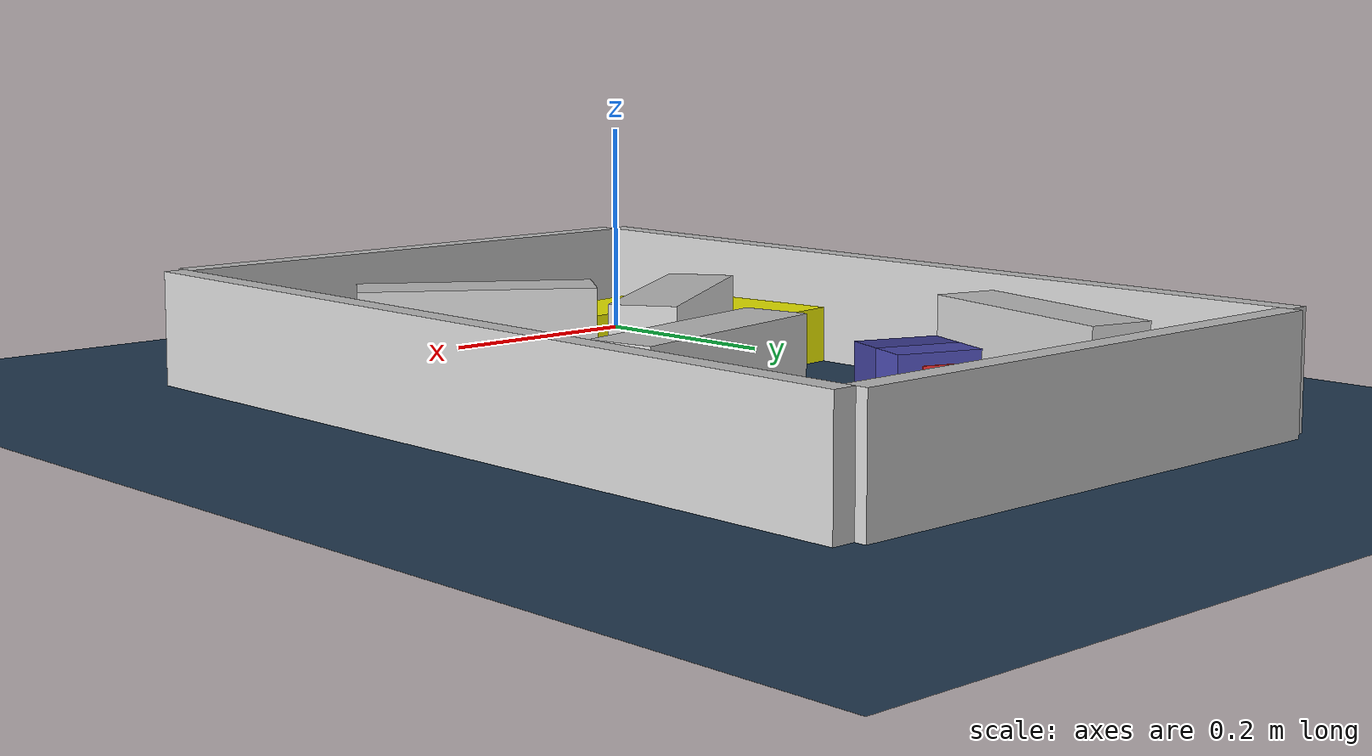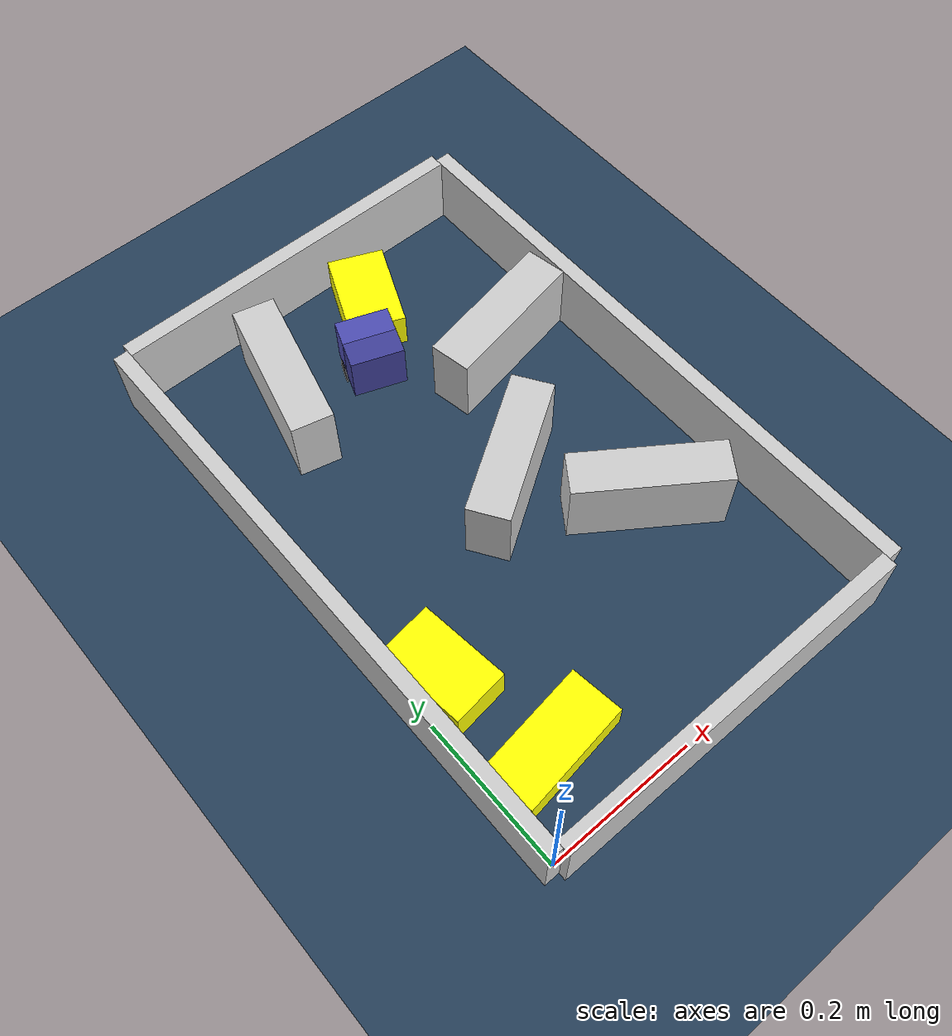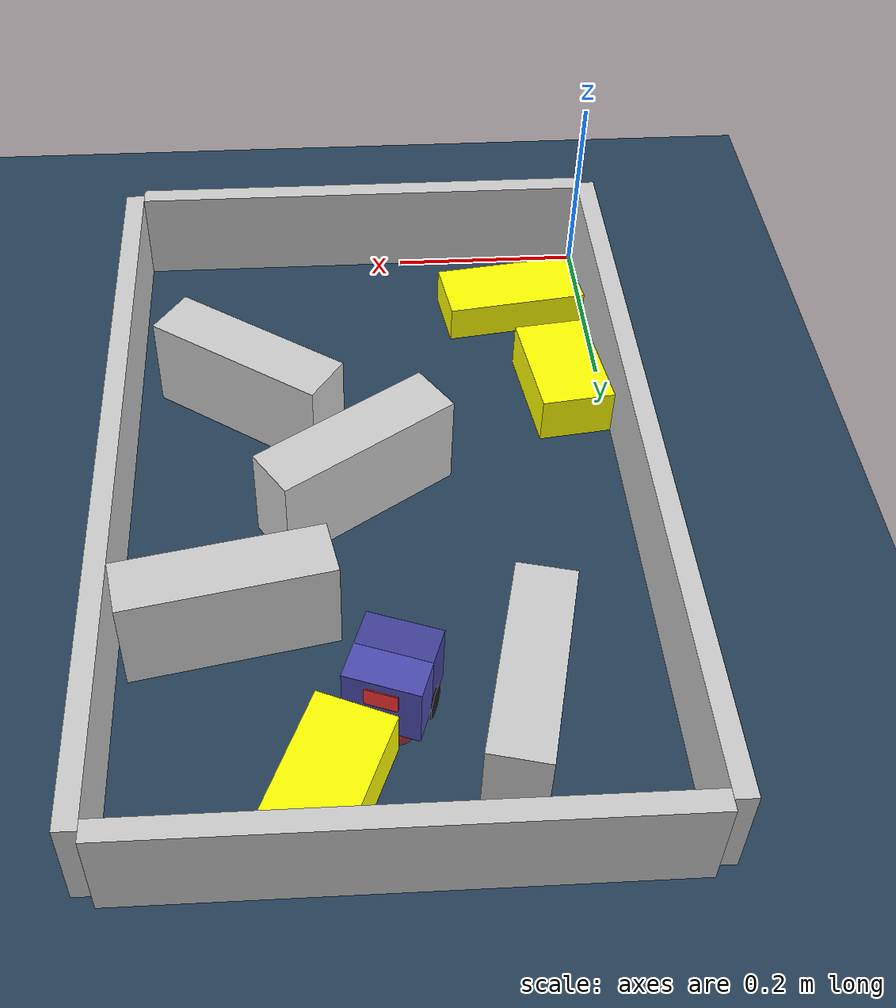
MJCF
<?xml version='1.0' encoding='utf-8'?>
<mujoco model="real_buildable">
  <compiler angle="degree" />
  <option timestep="0.002" integrator="implicitfast" iterations="100" cone="elliptic" />
  <default>
    <geom density="1" />
  </default>
  <asset>
    <texture builtin="gradient" height="3072" rgb1="0.3 0.5 0.7" rgb2="0 0 0" type="skybox" width="512" />
    <texture builtin="checker" height="300" mark="edge" markrgb="0.8 0.8 0.8" name="groundplane" rgb1="0.2 0.3 0.4" rgb2="0.1 0.2 0.3" type="2d" width="300" />
    <material name="groundplane" reflectance="0.2" texrepeat="5 5" texture="groundplane" texuniform="true" />
  </asset>
  <worldbody>
    <light dir="0 0 -1" directional="true" pos="0 0 1.5" />
    <geom name="floor" type="plane" condim="4" friction="0.5 0.005 0.001" material="groundplane" size="0 0 0.05" />
    <body name="walls">
      <geom name="wall_boundary_left" type="box" condim="4" friction="1.0 0.005 0.0001" rgba="0.8 0.8 0.8 1" pos="-0.010000 0.387500 0.050000" euler="0 0 0.000000" size="0.010000 0.397500 0.050000" />
      <geom name="wall_boundary_right" type="box" condim="4" friction="1.0 0.005 0.0001" rgba="0.8 0.8 0.8 1" pos="0.500000 0.387500 0.050000" euler="0 0 0.000000" size="0.010000 0.397500 0.050000" />
      <geom name="wall_boundary_bottom" type="box" condim="4" friction="1.0 0.005 0.0001" rgba="0.8 0.8 0.8 1" pos="0.245000 -0.010000 0.050000" euler="0 0 0.000000" size="0.245000 0.010000 0.050000" />
      <geom name="wall_boundary_top" type="box" condim="4" friction="1.0 0.005 0.0001" rgba="0.8 0.8 0.8 1" pos="0.245000 0.785000 0.050000" euler="0 0 0.000000" size="0.245000 0.010000 0.050000" />
      <geom name="wall_inner_1" type="box" condim="4" friction="1.0 0.005 0.0001" rgba="0.8 0.8 0.8 1" pos="0.268160 0.376264 0.050000" euler="0 0 213.073979" size="0.097500 0.027500 0.050000" />
      <geom name="wall_inner_2" type="box" condim="4" friction="1.0 0.005 0.0001" rgba="0.8 0.8 0.8 1" pos="0.371907 0.249159 0.050000" euler="0 0 145.103695" size="0.097500 0.027500 0.050000" />
      <geom name="wall_inner_3" type="box" condim="4" friction="1.0 0.005 0.0001" rgba="0.8 0.8 0.8 1" pos="0.389000 0.538000 0.050000" euler="0 0 10.700000" size="0.097500 0.027500 0.050000" />
      <geom name="wall_inner_4" type="box" condim="4" friction="1.0 0.005 0.0001" rgba="0.8 0.8 0.8 1" pos="0.133000 0.647000 0.050000" euler="0 0 76.100000" size="0.097500 0.027500 0.050000" />
    </body>
    <body name="car" pos="0.24638637798860588 0.62189680570359207 0.01" quat="0.82058996665937589 0 0 0.57151737210513931">
      <freejoint name="car_freejoint" />
      <inertial pos="0 0 0.0375" mass="0.35" diaginertia="0.000266 0.000266 0.000286" />
      <geom name="front_chassis_collision" type="box" pos="0.0175 0 0.0375" size="0.0175 0.035 0.0325" rgba="0.3 0.3 0.7 1" />
      <geom name="rear_chassis_collision" type="box" pos="-0.0175 0 0.0375" size="0.0175 0.035 0.0325" rgba="0.25 0.25 0.6 1" />
      <geom name="front_marker" type="box" pos="0.034 0 0.0505" size="0.002 0.015 0.01" rgba="1 0.2 0.2 1" contype="0" conaffinity="0" />
      <body name="rear_support_body" pos="-0.03 0 0.0025">
        <joint name="rear_caster_joint" type="ball" damping="0.0001" />
        <inertial pos="0 0 0" mass="0.025" diaginertia="0.000001 0.000001 0.000001" />
        <geom name="rear_support" type="sphere" pos="0 0 0" size="0.0025" friction="0 0 0" rgba="0.7 0.1 0.1 1" />
      </body>
      <body name="front_support_body" pos="0.03 0 0.0025">
        <joint name="front_caster_joint" type="ball" damping="0.0001" />
        <inertial pos="0 0 0" mass="0.025" diaginertia="0.000001 0.000001 0.000001" />
        <geom name="front_support" type="sphere" pos="0 0 0" size="0.0025" friction="0 0 0" rgba="0.1 0.7 0.1 1" />
      </body>
      <body name="left_wheel" pos="0 0.0375 0.015">
        <inertial pos="0 0 0" mass="0.05" diaginertia="0.000003 0.000006 0.000003" />
        <joint name="left_wheel_joint" type="hinge" axis="0 1 0" damping="0.01" armature="0.0001" />
        <geom name="left_wheel_collision" type="cylinder" size="0.015 0.0005" euler="90 0 0" rgba="0.1 0.1 0.1 1" />
      </body>
      <body name="right_wheel" pos="0 -0.0375 0.015">
        <inertial pos="0 0 0" mass="0.05" diaginertia="0.000003 0.000006 0.000003" />
        <joint name="right_wheel_joint" type="hinge" axis="0 1 0" damping="0.01" armature="0.0001" />
        <geom name="right_wheel_collision" type="cylinder" size="0.015 0.0005" euler="90 0 0" rgba="0.1 0.1 0.1 1" />
      </body>
    </body>
    <body name="obstacle_0_movable">
      <geom name="obstacle_0_movable" condim="4" pos="0.044509415659984231 0.23534635633197995 0.025000000000000001" friction="1 0.005 0.0001" rgba="1 1 0 1" size="0.037500 0.060000 0.025000" type="box" mass="0.1" quat="0.060714919251148414 0 0 -0.99815514754988188" />
      <joint type="free" />
    </body>
    <body name="obstacle_1_movable">
      <geom name="obstacle_1_movable" condim="4" pos="0.3022905552903834 0.7049528366328579 0.025000000000000001" friction="1 0.005 0.0001" rgba="1 1 0 1" size="0.037500 0.060000 0.025000" type="box" mass="0.1" quat="0.97922007829243052 0 0 -0.20280048882822305" />
      <joint type="free" />
    </body>
    <body name="obstacle_2_movable">
      <geom name="obstacle_2_movable" condim="4" pos="0.083233999999999905 0.093670999999999949 0.02" friction="1 0.005 0.0001" rgba="1 1 0 1" size="0.035000 0.075000 0.020000" type="box" mass="0.1" quat="0.65888046523520671 0 0 0.75224765372278668" />
      <joint type="free" />
    </body>
    <site name="goal" type="sphere" pos="0.245000 0.640000 0.0" size="0.02" rgba="1 0 0 0.5" />
  </worldbody>
  <actuator>
    <velocity name="left_wheel_drive" joint="left_wheel_joint" ctrlrange="-25 25" kv="0.75" forcerange="-0.5 0.5" />
    <velocity name="right_wheel_drive" joint="right_wheel_joint" ctrlrange="-25 25" kv="0.75" forcerange="-0.5 0.5" />
  </actuator>
</mujoco>
